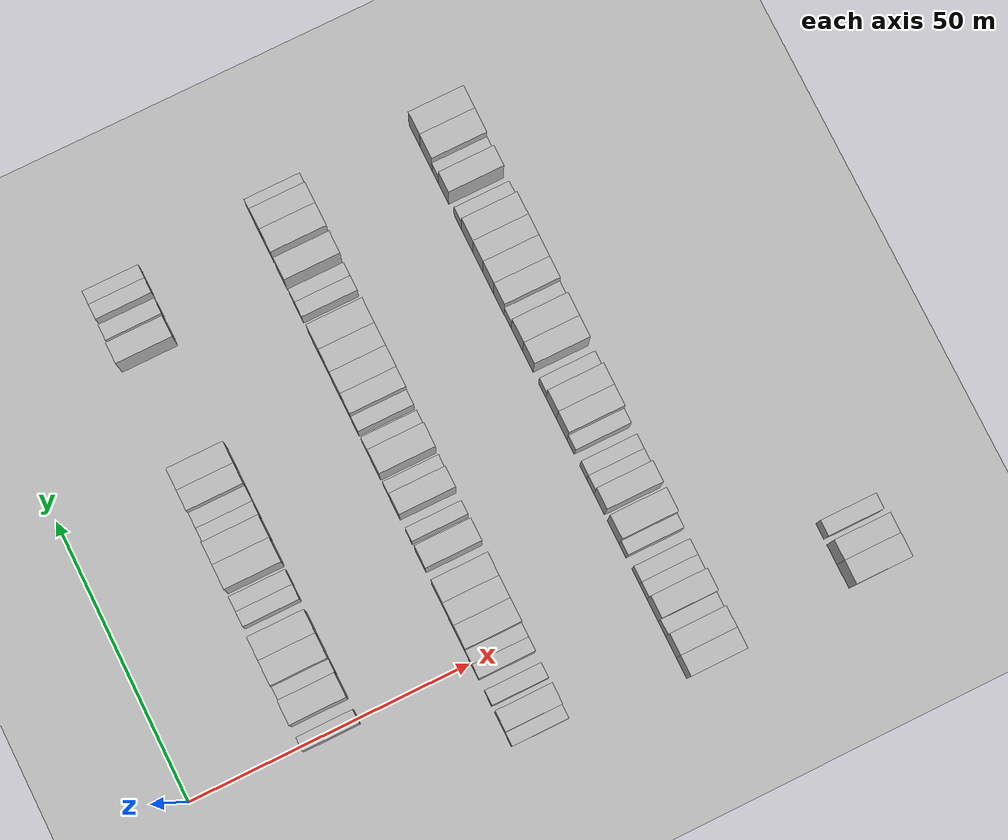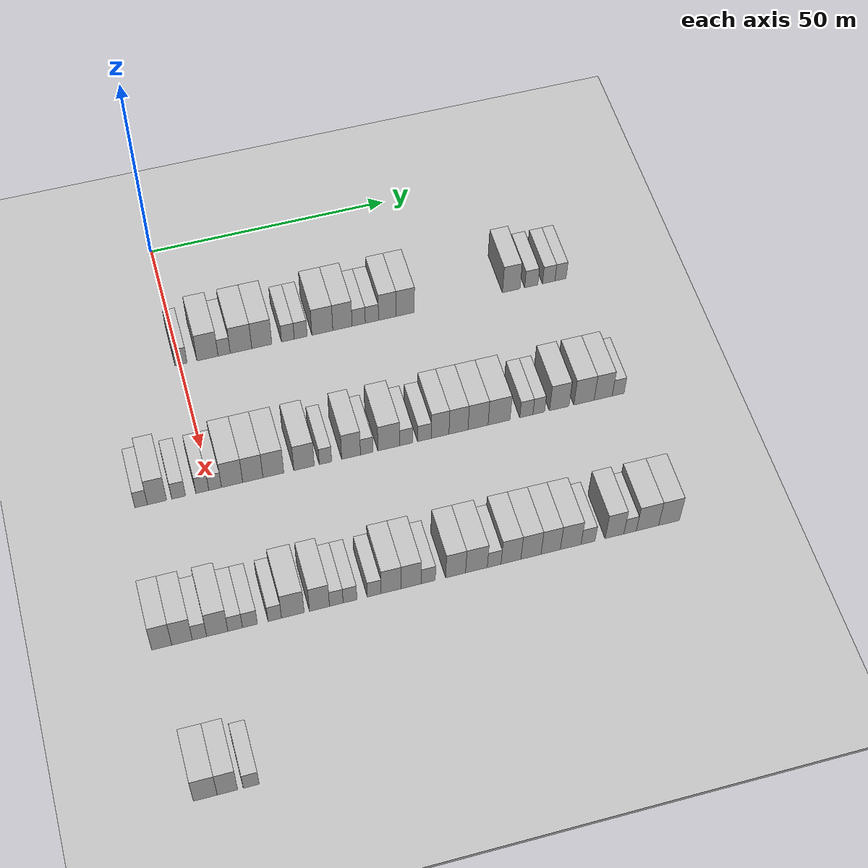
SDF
<sdf version="1.6">
 <world name="default">
  <include><name>ground_plane_1</name><uri>model://HANNAS_ground_plane</uri></include>
  <include>
   <name>ground_plane_2</name>
   <uri>model://HANNAS_ground_plane</uri>
   <pose>100 0 0  0 0 0</pose>
  </include>
  <model name="building_97">
   <static>1</static>
   <pose>25.0000 0.2616 0 0.000000 0.000000 0.000000</pose>
   <link name="link">
    <pose>0 0 3.00 0 0 0</pose>
    <collision name="collision"><geometry><box><size>10.0000 2.4591 6.0000</size></box></geometry></collision>
    <visual name="visual">
     <cast_shadows>0</cast_shadows>
     <geometry><box><size>10.0000 2.4591 6.0000</size></box></geometry>
     <material>
      <script>
       <uri>model://HANNAS_wall/materials/scripts</uri>
       <uri>model://HANNAS_wall/materials/textures</uri>
       <name>vrc/HANNAS_wall</name>
      </script>
     </material>
    </visual>
   </link>
  </model>
  <model name="building_98">
   <static>1</static>
   <pose>25.0000 5.6486 0 0.000000 0.000000 0.000000</pose>
   <link name="link">
    <pose>0 0 4.50 0 0 0</pose>
    <collision name="collision"><geometry><box><size>10.0000 4.3149 9.0000</size></box></geometry></collision>
    <visual name="visual">
     <cast_shadows>0</cast_shadows>
     <geometry><box><size>10.0000 4.3149 9.0000</size></box></geometry>
     <material>
      <script>
       <uri>model://HANNAS_wall/materials/scripts</uri>
       <uri>model://HANNAS_wall/materials/textures</uri>
       <name>vrc/HANNAS_wall</name>
      </script>
     </material>
    </visual>
   </link>
  </model>
  <model name="building_99">
   <static>1</static>
   <pose>25.0000 9.0639 0 0.000000 0.000000 0.000000</pose>
   <link name="link">
    <pose>0 0 3.00 0 0 0</pose>
    <collision name="collision"><geometry><box><size>10.0000 2.5157 6.0000</size></box></geometry></collision>
    <visual name="visual">
     <cast_shadows>0</cast_shadows>
     <geometry><box><size>10.0000 2.5157 6.0000</size></box></geometry>
     <material>
      <script>
       <uri>model://HANNAS_wall/materials/scripts</uri>
       <uri>model://HANNAS_wall/materials/textures</uri>
       <name>vrc/HANNAS_wall</name>
      </script>
     </material>
    </visual>
   </link>
  </model>
  <model name="building_100">
   <static>1</static>
   <pose>25.0000 12.5320 0 0.000000 0.000000 0.000000</pose>
   <link name="link">
    <pose>0 0 4.50 0 0 0</pose>
    <collision name="collision"><geometry><box><size>10.0000 4.4206 9.0000</size></box></geometry></collision>
    <visual name="visual">
     <cast_shadows>0</cast_shadows>
     <geometry><box><size>10.0000 4.4206 9.0000</size></box></geometry>
     <material>
      <script>
       <uri>model://HANNAS_wall/materials/scripts</uri>
       <uri>model://HANNAS_wall/materials/textures</uri>
       <name>vrc/HANNAS_wall</name>
      </script>
     </material>
    </visual>
   </link>
  </model>
  <model name="building_101">
   <static>1</static>
   <pose>25.0000 16.8081 0 0.000000 0.000000 0.000000</pose>
   <link name="link">
    <pose>0 0 4.50 0 0 0</pose>
    <collision name="collision"><geometry><box><size>10.0000 4.1316 9.0000</size></box></geometry></collision>
    <visual name="visual">
     <cast_shadows>0</cast_shadows>
     <geometry><box><size>10.0000 4.1316 9.0000</size></box></geometry>
     <material>
      <script>
       <uri>model://HANNAS_wall/materials/scripts</uri>
       <uri>model://HANNAS_wall/materials/textures</uri>
       <name>vrc/HANNAS_wall</name>
      </script>
     </material>
    </visual>
   </link>
  </model>
  <model name="building_102">
   <static>1</static>
   <pose>25.0000 22.2005 0 0.000000 0.000000 0.000000</pose>
   <link name="link">
    <pose>0 0 3.00 0 0 0</pose>
    <collision name="collision"><geometry><box><size>10.0000 2.6532 6.0000</size></box></geometry></collision>
    <visual name="visual">
     <cast_shadows>0</cast_shadows>
     <geometry><box><size>10.0000 2.6532 6.0000</size></box></geometry>
     <material>
      <script>
       <uri>model://HANNAS_wall/materials/scripts</uri>
       <uri>model://HANNAS_wall/materials/textures</uri>
       <name>vrc/HANNAS_wall</name>
      </script>
     </material>
    </visual>
   </link>
  </model>
  <model name="building_103">
   <static>1</static>
   <pose>25.0000 24.8599 0 0.000000 0.000000 0.000000</pose>
   <link name="link">
    <pose>0 0 3.00 0 0 0</pose>
    <collision name="collision"><geometry><box><size>10.0000 2.6656 6.0000</size></box></geometry></collision>
    <visual name="visual">
     <cast_shadows>0</cast_shadows>
     <geometry><box><size>10.0000 2.6656 6.0000</size></box></geometry>
     <material>
      <script>
       <uri>model://HANNAS_wall/materials/scripts</uri>
       <uri>model://HANNAS_wall/materials/textures</uri>
       <name>vrc/HANNAS_wall</name>
      </script>
     </material>
    </visual>
   </link>
  </model>
  <model name="building_104">
   <static>1</static>
   <pose>25.0000 29.3678 0 0.000000 0.000000 0.000000</pose>
   <link name="link">
    <pose>0 0 4.50 0 0 0</pose>
    <collision name="collision"><geometry><box><size>10.0000 4.3503 9.0000</size></box></geometry></collision>
    <visual name="visual">
     <cast_shadows>0</cast_shadows>
     <geometry><box><size>10.0000 4.3503 9.0000</size></box></geometry>
     <material>
      <script>
       <uri>model://HANNAS_wall/materials/scripts</uri>
       <uri>model://HANNAS_wall/materials/textures</uri>
       <name>vrc/HANNAS_wall</name>
      </script>
     </material>
    </visual>
   </link>
  </model>
  <model name="building_105">
   <static>1</static>
   <pose>25.0000 33.5503 0 0.000000 0.000000 0.000000</pose>
   <link name="link">
    <pose>0 0 4.50 0 0 0</pose>
    <collision name="collision"><geometry><box><size>10.0000 4.0147 9.0000</size></box></geometry></collision>
    <visual name="visual">
     <cast_shadows>0</cast_shadows>
     <geometry><box><size>10.0000 4.0147 9.0000</size></box></geometry>
     <material>
      <script>
       <uri>model://HANNAS_wall/materials/scripts</uri>
       <uri>model://HANNAS_wall/materials/textures</uri>
       <name>vrc/HANNAS_wall</name>
      </script>
     </material>
    </visual>
   </link>
  </model>
  <model name="building_106">
   <static>1</static>
   <pose>25.0000 36.9479 0 0.000000 0.000000 0.000000</pose>
   <link name="link">
    <pose>0 0 3.00 0 0 0</pose>
    <collision name="collision"><geometry><box><size>10.0000 2.7805 6.0000</size></box></geometry></collision>
    <visual name="visual">
     <cast_shadows>0</cast_shadows>
     <geometry><box><size>10.0000 2.7805 6.0000</size></box></geometry>
     <material>
      <script>
       <uri>model://HANNAS_wall/materials/scripts</uri>
       <uri>model://HANNAS_wall/materials/textures</uri>
       <name>vrc/HANNAS_wall</name>
      </script>
     </material>
    </visual>
   </link>
  </model>
  <model name="building_107">
   <static>1</static>
   <pose>25.0000 39.7214 0 0.000000 0.000000 0.000000</pose>
   <link name="link">
    <pose>0 0 3.00 0 0 0</pose>
    <collision name="collision"><geometry><box><size>10.0000 2.7665 6.0000</size></box></geometry></collision>
    <visual name="visual">
     <cast_shadows>0</cast_shadows>
     <geometry><box><size>10.0000 2.7665 6.0000</size></box></geometry>
     <material>
      <script>
       <uri>model://HANNAS_wall/materials/scripts</uri>
       <uri>model://HANNAS_wall/materials/textures</uri>
       <name>vrc/HANNAS_wall</name>
      </script>
     </material>
    </visual>
   </link>
  </model>
  <model name="building_108">
   <static>1</static>
   <pose>25.0000 42.9335 0 0.000000 0.000000 0.000000</pose>
   <link name="link">
    <pose>0 0 4.50 0 0 0</pose>
    <collision name="collision"><geometry><box><size>10.0000 3.6577 9.0000</size></box></geometry></collision>
    <visual name="visual">
     <cast_shadows>0</cast_shadows>
     <geometry><box><size>10.0000 3.6577 9.0000</size></box></geometry>
     <material>
      <script>
       <uri>model://HANNAS_wall/materials/scripts</uri>
       <uri>model://HANNAS_wall/materials/textures</uri>
       <name>vrc/HANNAS_wall</name>
      </script>
     </material>
    </visual>
   </link>
  </model>
  <model name="building_109">
   <static>1</static>
   <pose>25.0000 46.6981 0 0.000000 0.000000 0.000000</pose>
   <link name="link">
    <pose>0 0 4.50 0 0 0</pose>
    <collision name="collision"><geometry><box><size>10.0000 3.8717 9.0000</size></box></geometry></collision>
    <visual name="visual">
     <cast_shadows>0</cast_shadows>
     <geometry><box><size>10.0000 3.8717 9.0000</size></box></geometry>
     <material>
      <script>
       <uri>model://HANNAS_wall/materials/scripts</uri>
       <uri>model://HANNAS_wall/materials/textures</uri>
       <name>vrc/HANNAS_wall</name>
      </script>
     </material>
    </visual>
   </link>
  </model>
  <model name="building_110">
   <static>1</static>
   <pose>25.0000 69.3242 0 0.000000 0.000000 0.000000</pose>
   <link name="link">
    <pose>0 0 4.50 0 0 0</pose>
    <collision name="collision"><geometry><box><size>10.0000 3.7935 9.0000</size></box></geometry></collision>
    <visual name="visual">
     <cast_shadows>0</cast_shadows>
     <geometry><box><size>10.0000 3.7935 9.0000</size></box></geometry>
     <material>
      <script>
       <uri>model://HANNAS_wall/materials/scripts</uri>
       <uri>model://HANNAS_wall/materials/textures</uri>
       <name>vrc/HANNAS_wall</name>
      </script>
     </material>
    </visual>
   </link>
  </model>
  <model name="building_111">
   <static>1</static>
   <pose>25.0000 73.6402 0 0.000000 0.000000 0.000000</pose>
   <link name="link">
    <pose>0 0 3.00 0 0 0</pose>
    <collision name="collision"><geometry><box><size>10.0000 2.8386 6.0000</size></box></geometry></collision>
    <visual name="visual">
     <cast_shadows>0</cast_shadows>
     <geometry><box><size>10.0000 2.8386 6.0000</size></box></geometry>
     <material>
      <script>
       <uri>model://HANNAS_wall/materials/scripts</uri>
       <uri>model://HANNAS_wall/materials/textures</uri>
       <name>vrc/HANNAS_wall</name>
      </script>
     </material>
    </visual>
   </link>
  </model>
  <model name="building_112">
   <static>1</static>
   <pose>25.0000 77.4121 0 0.000000 0.000000 0.000000</pose>
   <link name="link">
    <pose>0 0 3.00 0 0 0</pose>
    <collision name="collision"><geometry><box><size>10.0000 2.7052 6.0000</size></box></geometry></collision>
    <visual name="visual">
     <cast_shadows>0</cast_shadows>
     <geometry><box><size>10.0000 2.7052 6.0000</size></box></geometry>
     <material>
      <script>
       <uri>model://HANNAS_wall/materials/scripts</uri>
       <uri>model://HANNAS_wall/materials/textures</uri>
       <name>vrc/HANNAS_wall</name>
      </script>
     </material>
    </visual>
   </link>
  </model>
  <model name="building_113">
   <static>1</static>
   <pose>25.0000 79.9692 0 0.000000 0.000000 0.000000</pose>
   <link name="link">
    <pose>0 0 3.00 0 0 0</pose>
    <collision name="collision"><geometry><box><size>10.0000 2.4090 6.0000</size></box></geometry></collision>
    <visual name="visual">
     <cast_shadows>0</cast_shadows>
     <geometry><box><size>10.0000 2.4090 6.0000</size></box></geometry>
     <material>
      <script>
       <uri>model://HANNAS_wall/materials/scripts</uri>
       <uri>model://HANNAS_wall/materials/textures</uri>
       <name>vrc/HANNAS_wall</name>
      </script>
     </material>
    </visual>
   </link>
  </model>
  <model name="building_318">
   <static>1</static>
   <pose>55.0000 -13.6308 0 0.000000 0.000000 0.000000</pose>
   <link name="link">
    <pose>0 0 3.00 0 0 0</pose>
    <collision name="collision"><geometry><box><size>10.0000 2.4141 6.0000</size></box></geometry></collision>
    <visual name="visual">
     <cast_shadows>0</cast_shadows>
     <geometry><box><size>10.0000 2.4141 6.0000</size></box></geometry>
     <material>
      <script>
       <uri>model://HANNAS_wall/materials/scripts</uri>
       <uri>model://HANNAS_wall/materials/textures</uri>
       <name>vrc/HANNAS_wall</name>
      </script>
     </material>
    </visual>
   </link>
  </model>
  <model name="building_319">
   <static>1</static>
   <pose>55.0000 -10.5659 0 0.000000 0.000000 0.000000</pose>
   <link name="link">
    <pose>0 0 4.50 0 0 0</pose>
    <collision name="collision"><geometry><box><size>10.0000 3.7156 9.0000</size></box></geometry></collision>
    <visual name="visual">
     <cast_shadows>0</cast_shadows>
     <geometry><box><size>10.0000 3.7156 9.0000</size></box></geometry>
     <material>
      <script>
       <uri>model://HANNAS_wall/materials/scripts</uri>
       <uri>model://HANNAS_wall/materials/textures</uri>
       <name>vrc/HANNAS_wall</name>
      </script>
     </material>
    </visual>
   </link>
  </model>
  <model name="building_320">
   <static>1</static>
   <pose>55.0000 -6.3694 0 0.000000 0.000000 0.000000</pose>
   <link name="link">
    <pose>0 0 3.00 0 0 0</pose>
    <collision name="collision"><geometry><box><size>10.0000 2.6775 6.0000</size></box></geometry></collision>
    <visual name="visual">
     <cast_shadows>0</cast_shadows>
     <geometry><box><size>10.0000 2.6775 6.0000</size></box></geometry>
     <material>
      <script>
       <uri>model://HANNAS_wall/materials/scripts</uri>
       <uri>model://HANNAS_wall/materials/textures</uri>
       <name>vrc/HANNAS_wall</name>
      </script>
     </material>
    </visual>
   </link>
  </model>
  <model name="building_321">
   <static>1</static>
   <pose>55.0000 -1.7694 0 0.000000 0.000000 0.000000</pose>
   <link name="link">
    <pose>0 0 3.00 0 0 0</pose>
    <collision name="collision"><geometry><box><size>10.0000 2.5225 6.0000</size></box></geometry></collision>
    <visual name="visual">
     <cast_shadows>0</cast_shadows>
     <geometry><box><size>10.0000 2.5225 6.0000</size></box></geometry>
     <material>
      <script>
       <uri>model://HANNAS_wall/materials/scripts</uri>
       <uri>model://HANNAS_wall/materials/textures</uri>
       <name>vrc/HANNAS_wall</name>
      </script>
     </material>
    </visual>
   </link>
  </model>
  <model name="building_322">
   <static>1</static>
   <pose>55.0000 0.7311 0 0.000000 0.000000 0.000000</pose>
   <link name="link">
    <pose>0 0 3.00 0 0 0</pose>
    <collision name="collision"><geometry><box><size>10.0000 2.4786 6.0000</size></box></geometry></collision>
    <visual name="visual">
     <cast_shadows>0</cast_shadows>
     <geometry><box><size>10.0000 2.4786 6.0000</size></box></geometry>
     <material>
      <script>
       <uri>model://HANNAS_wall/materials/scripts</uri>
       <uri>model://HANNAS_wall/materials/textures</uri>
       <name>vrc/HANNAS_wall</name>
      </script>
     </material>
    </visual>
   </link>
  </model>
  <model name="building_323">
   <static>1</static>
   <pose>55.0000 4.0510 0 0.000000 0.000000 0.000000</pose>
   <link name="link">
    <pose>0 0 4.50 0 0 0</pose>
    <collision name="collision"><geometry><box><size>10.0000 4.1611 9.0000</size></box></geometry></collision>
    <visual name="visual">
     <cast_shadows>0</cast_shadows>
     <geometry><box><size>10.0000 4.1611 9.0000</size></box></geometry>
     <material>
      <script>
       <uri>model://HANNAS_wall/materials/scripts</uri>
       <uri>model://HANNAS_wall/materials/textures</uri>
       <name>vrc/HANNAS_wall</name>
      </script>
     </material>
    </visual>
   </link>
  </model>
  <model name="building_324">
   <static>1</static>
   <pose>55.0000 8.1205 0 0.000000 0.000000 0.000000</pose>
   <link name="link">
    <pose>0 0 4.50 0 0 0</pose>
    <collision name="collision"><geometry><box><size>10.0000 3.9779 9.0000</size></box></geometry></collision>
    <visual name="visual">
     <cast_shadows>0</cast_shadows>
     <geometry><box><size>10.0000 3.9779 9.0000</size></box></geometry>
     <material>
      <script>
       <uri>model://HANNAS_wall/materials/scripts</uri>
       <uri>model://HANNAS_wall/materials/textures</uri>
       <name>vrc/HANNAS_wall</name>
      </script>
     </material>
    </visual>
   </link>
  </model>
  <model name="building_325">
   <static>1</static>
   <pose>55.0000 12.1557 0 0.000000 0.000000 0.000000</pose>
   <link name="link">
    <pose>0 0 4.50 0 0 0</pose>
    <collision name="collision"><geometry><box><size>10.0000 4.0927 9.0000</size></box></geometry></collision>
    <visual name="visual">
     <cast_shadows>0</cast_shadows>
     <geometry><box><size>10.0000 4.0927 9.0000</size></box></geometry>
     <material>
      <script>
       <uri>model://HANNAS_wall/materials/scripts</uri>
       <uri>model://HANNAS_wall/materials/textures</uri>
       <name>vrc/HANNAS_wall</name>
      </script>
     </material>
    </visual>
   </link>
  </model>
  <model name="building_326">
   <static>1</static>
   <pose>55.0000 18.2205 0 0.000000 0.000000 0.000000</pose>
   <link name="link">
    <pose>0 0 4.50 0 0 0</pose>
    <collision name="collision"><geometry><box><size>10.0000 4.0369 9.0000</size></box></geometry></collision>
    <visual name="visual">
     <cast_shadows>0</cast_shadows>
     <geometry><box><size>10.0000 4.0369 9.0000</size></box></geometry>
     <material>
      <script>
       <uri>model://HANNAS_wall/materials/scripts</uri>
       <uri>model://HANNAS_wall/materials/textures</uri>
       <name>vrc/HANNAS_wall</name>
      </script>
     </material>
    </visual>
   </link>
  </model>
  <model name="building_327">
   <static>1</static>
   <pose>55.0000 22.4683 0 0.000000 0.000000 0.000000</pose>
   <link name="link">
    <pose>0 0 3.00 0 0 0</pose>
    <collision name="collision"><geometry><box><size>10.0000 2.4587 6.0000</size></box></geometry></collision>
    <visual name="visual">
     <cast_shadows>0</cast_shadows>
     <geometry><box><size>10.0000 2.4587 6.0000</size></box></geometry>
     <material>
      <script>
       <uri>model://HANNAS_wall/materials/scripts</uri>
       <uri>model://HANNAS_wall/materials/textures</uri>
       <name>vrc/HANNAS_wall</name>
      </script>
     </material>
    </visual>
   </link>
  </model>
  <model name="building_328">
   <static>1</static>
   <pose>55.0000 27.5744 0 0.000000 0.000000 0.000000</pose>
   <link name="link">
    <pose>0 0 4.50 0 0 0</pose>
    <collision name="collision"><geometry><box><size>10.0000 3.7535 9.0000</size></box></geometry></collision>
    <visual name="visual">
     <cast_shadows>0</cast_shadows>
     <geometry><box><size>10.0000 3.7535 9.0000</size></box></geometry>
     <material>
      <script>
       <uri>model://HANNAS_wall/materials/scripts</uri>
       <uri>model://HANNAS_wall/materials/textures</uri>
       <name>vrc/HANNAS_wall</name>
      </script>
     </material>
    </visual>
   </link>
  </model>
  <model name="building_329">
   <static>1</static>
   <pose>55.0000 30.6943 0 0.000000 0.000000 0.000000</pose>
   <link name="link">
    <pose>0 0 3.00 0 0 0</pose>
    <collision name="collision"><geometry><box><size>10.0000 2.4864 6.0000</size></box></geometry></collision>
    <visual name="visual">
     <cast_shadows>0</cast_shadows>
     <geometry><box><size>10.0000 2.4864 6.0000</size></box></geometry>
     <material>
      <script>
       <uri>model://HANNAS_wall/materials/scripts</uri>
       <uri>model://HANNAS_wall/materials/textures</uri>
       <name>vrc/HANNAS_wall</name>
      </script>
     </material>
    </visual>
   </link>
  </model>
  <model name="building_330">
   <static>1</static>
   <pose>55.0000 35.1027 0 0.000000 0.000000 0.000000</pose>
   <link name="link">
    <pose>0 0 4.50 0 0 0</pose>
    <collision name="collision"><geometry><box><size>10.0000 4.3304 9.0000</size></box></geometry></collision>
    <visual name="visual">
     <cast_shadows>0</cast_shadows>
     <geometry><box><size>10.0000 4.3304 9.0000</size></box></geometry>
     <material>
      <script>
       <uri>model://HANNAS_wall/materials/scripts</uri>
       <uri>model://HANNAS_wall/materials/textures</uri>
       <name>vrc/HANNAS_wall</name>
      </script>
     </material>
    </visual>
   </link>
  </model>
  <model name="building_331">
   <static>1</static>
   <pose>55.0000 38.5984 0 0.000000 0.000000 0.000000</pose>
   <link name="link">
    <pose>0 0 3.00 0 0 0</pose>
    <collision name="collision"><geometry><box><size>10.0000 2.6610 6.0000</size></box></geometry></collision>
    <visual name="visual">
     <cast_shadows>0</cast_shadows>
     <geometry><box><size>10.0000 2.6610 6.0000</size></box></geometry>
     <material>
      <script>
       <uri>model://HANNAS_wall/materials/scripts</uri>
       <uri>model://HANNAS_wall/materials/textures</uri>
       <name>vrc/HANNAS_wall</name>
      </script>
     </material>
    </visual>
   </link>
  </model>
  <model name="building_332">
   <static>1</static>
   <pose>55.0000 42.2958 0 0.000000 0.000000 0.000000</pose>
   <link name="link">
    <pose>0 0 3.00 0 0 0</pose>
    <collision name="collision"><geometry><box><size>10.0000 2.7339 6.0000</size></box></geometry></collision>
    <visual name="visual">
     <cast_shadows>0</cast_shadows>
     <geometry><box><size>10.0000 2.7339 6.0000</size></box></geometry>
     <material>
      <script>
       <uri>model://HANNAS_wall/materials/scripts</uri>
       <uri>model://HANNAS_wall/materials/textures</uri>
       <name>vrc/HANNAS_wall</name>
      </script>
     </material>
    </visual>
   </link>
  </model>
  <model name="building_333">
   <static>1</static>
   <pose>55.0000 45.4675 0 0.000000 0.000000 0.000000</pose>
   <link name="link">
    <pose>0 0 4.50 0 0 0</pose>
    <collision name="collision"><geometry><box><size>10.0000 3.6093 9.0000</size></box></geometry></collision>
    <visual name="visual">
     <cast_shadows>0</cast_shadows>
     <geometry><box><size>10.0000 3.6093 9.0000</size></box></geometry>
     <material>
      <script>
       <uri>model://HANNAS_wall/materials/scripts</uri>
       <uri>model://HANNAS_wall/materials/textures</uri>
       <name>vrc/HANNAS_wall</name>
      </script>
     </material>
    </visual>
   </link>
  </model>
  <model name="building_334">
   <static>1</static>
   <pose>55.0000 49.2082 0 0.000000 0.000000 0.000000</pose>
   <link name="link">
    <pose>0 0 4.50 0 0 0</pose>
    <collision name="collision"><geometry><box><size>10.0000 3.8721 9.0000</size></box></geometry></collision>
    <visual name="visual">
     <cast_shadows>0</cast_shadows>
     <geometry><box><size>10.0000 3.8721 9.0000</size></box></geometry>
     <material>
      <script>
       <uri>model://HANNAS_wall/materials/scripts</uri>
       <uri>model://HANNAS_wall/materials/textures</uri>
       <name>vrc/HANNAS_wall</name>
      </script>
     </material>
    </visual>
   </link>
  </model>
  <model name="building_335">
   <static>1</static>
   <pose>55.0000 53.1935 0 0.000000 0.000000 0.000000</pose>
   <link name="link">
    <pose>0 0 4.50 0 0 0</pose>
    <collision name="collision"><geometry><box><size>10.0000 4.0985 9.0000</size></box></geometry></collision>
    <visual name="visual">
     <cast_shadows>0</cast_shadows>
     <geometry><box><size>10.0000 4.0985 9.0000</size></box></geometry>
     <material>
      <script>
       <uri>model://HANNAS_wall/materials/scripts</uri>
       <uri>model://HANNAS_wall/materials/textures</uri>
       <name>vrc/HANNAS_wall</name>
      </script>
     </material>
    </visual>
   </link>
  </model>
  <model name="building_336">
   <static>1</static>
   <pose>55.0000 57.4901 0 0.000000 0.000000 0.000000</pose>
   <link name="link">
    <pose>0 0 4.50 0 0 0</pose>
    <collision name="collision"><geometry><box><size>10.0000 4.4948 9.0000</size></box></geometry></collision>
    <visual name="visual">
     <cast_shadows>0</cast_shadows>
     <geometry><box><size>10.0000 4.4948 9.0000</size></box></geometry>
     <material>
      <script>
       <uri>model://HANNAS_wall/materials/scripts</uri>
       <uri>model://HANNAS_wall/materials/textures</uri>
       <name>vrc/HANNAS_wall</name>
      </script>
     </material>
    </visual>
   </link>
  </model>
  <model name="building_337">
   <static>1</static>
   <pose>55.0000 63.0893 0 0.000000 0.000000 0.000000</pose>
   <link name="link">
    <pose>0 0 3.00 0 0 0</pose>
    <collision name="collision"><geometry><box><size>10.0000 2.7036 6.0000</size></box></geometry></collision>
    <visual name="visual">
     <cast_shadows>0</cast_shadows>
     <geometry><box><size>10.0000 2.7036 6.0000</size></box></geometry>
     <material>
      <script>
       <uri>model://HANNAS_wall/materials/scripts</uri>
       <uri>model://HANNAS_wall/materials/textures</uri>
       <name>vrc/HANNAS_wall</name>
      </script>
     </material>
    </visual>
   </link>
  </model>
  <model name="building_338">
   <static>1</static>
   <pose>55.0000 65.6422 0 0.000000 0.000000 0.000000</pose>
   <link name="link">
    <pose>0 0 3.00 0 0 0</pose>
    <collision name="collision"><geometry><box><size>10.0000 2.4022 6.0000</size></box></geometry></collision>
    <visual name="visual">
     <cast_shadows>0</cast_shadows>
     <geometry><box><size>10.0000 2.4022 6.0000</size></box></geometry>
     <material>
      <script>
       <uri>model://HANNAS_wall/materials/scripts</uri>
       <uri>model://HANNAS_wall/materials/textures</uri>
       <name>vrc/HANNAS_wall</name>
      </script>
     </material>
    </visual>
   </link>
  </model>
  <model name="building_339">
   <static>1</static>
   <pose>55.0000 69.8674 0 0.000000 0.000000 0.000000</pose>
   <link name="link">
    <pose>0 0 4.50 0 0 0</pose>
    <collision name="collision"><geometry><box><size>10.0000 4.0483 9.0000</size></box></geometry></collision>
    <visual name="visual">
     <cast_shadows>0</cast_shadows>
     <geometry><box><size>10.0000 4.0483 9.0000</size></box></geometry>
     <material>
      <script>
       <uri>model://HANNAS_wall/materials/scripts</uri>
       <uri>model://HANNAS_wall/materials/textures</uri>
       <name>vrc/HANNAS_wall</name>
      </script>
     </material>
    </visual>
   </link>
  </model>
  <model name="building_340">
   <static>1</static>
   <pose>55.0000 74.9980 0 0.000000 0.000000 0.000000</pose>
   <link name="link">
    <pose>0 0 4.50 0 0 0</pose>
    <collision name="collision"><geometry><box><size>10.0000 4.2129 9.0000</size></box></geometry></collision>
    <visual name="visual">
     <cast_shadows>0</cast_shadows>
     <geometry><box><size>10.0000 4.2129 9.0000</size></box></geometry>
     <material>
      <script>
       <uri>model://HANNAS_wall/materials/scripts</uri>
       <uri>model://HANNAS_wall/materials/textures</uri>
       <name>vrc/HANNAS_wall</name>
      </script>
     </material>
    </visual>
   </link>
  </model>
  <model name="building_341">
   <static>1</static>
   <pose>55.0000 78.9836 0 0.000000 0.000000 0.000000</pose>
   <link name="link">
    <pose>0 0 4.50 0 0 0</pose>
    <collision name="collision"><geometry><box><size>10.0000 3.7583 9.0000</size></box></geometry></collision>
    <visual name="visual">
     <cast_shadows>0</cast_shadows>
     <geometry><box><size>10.0000 3.7583 9.0000</size></box></geometry>
     <material>
      <script>
       <uri>model://HANNAS_wall/materials/scripts</uri>
       <uri>model://HANNAS_wall/materials/textures</uri>
       <name>vrc/HANNAS_wall</name>
      </script>
     </material>
    </visual>
   </link>
  </model>
  <model name="building_342">
   <static>1</static>
   <pose>55.0000 82.1033 0 0.000000 0.000000 0.000000</pose>
   <link name="link">
    <pose>0 0 3.00 0 0 0</pose>
    <collision name="collision"><geometry><box><size>10.0000 2.4813 6.0000</size></box></geometry></collision>
    <visual name="visual">
     <cast_shadows>0</cast_shadows>
     <geometry><box><size>10.0000 2.4813 6.0000</size></box></geometry>
     <material>
      <script>
       <uri>model://HANNAS_wall/materials/scripts</uri>
       <uri>model://HANNAS_wall/materials/textures</uri>
       <name>vrc/HANNAS_wall</name>
      </script>
     </material>
    </visual>
   </link>
  </model>
  <model name="building_554">
   <static>1</static>
   <pose>85.0000 -15.6357 0 0.000000 0.000000 0.000000</pose>
   <link name="link">
    <pose>0 0 4.50 0 0 0</pose>
    <collision name="collision"><geometry><box><size>10.0000 3.6910 9.0000</size></box></geometry></collision>
    <visual name="visual">
     <cast_shadows>0</cast_shadows>
     <geometry><box><size>10.0000 3.6910 9.0000</size></box></geometry>
     <material>
      <script>
       <uri>model://HANNAS_wall/materials/scripts</uri>
       <uri>model://HANNAS_wall/materials/textures</uri>
       <name>vrc/HANNAS_wall</name>
      </script>
     </material>
    </visual>
   </link>
  </model>
  <model name="building_555">
   <static>1</static>
   <pose>85.0000 -11.8846 0 0.000000 0.000000 0.000000</pose>
   <link name="link">
    <pose>0 0 4.50 0 0 0</pose>
    <collision name="collision"><geometry><box><size>10.0000 3.8113 9.0000</size></box></geometry></collision>
    <visual name="visual">
     <cast_shadows>0</cast_shadows>
     <geometry><box><size>10.0000 3.8113 9.0000</size></box></geometry>
     <material>
      <script>
       <uri>model://HANNAS_wall/materials/scripts</uri>
       <uri>model://HANNAS_wall/materials/textures</uri>
       <name>vrc/HANNAS_wall</name>
      </script>
     </material>
    </visual>
   </link>
  </model>
  <model name="building_556">
   <static>1</static>
   <pose>85.0000 -8.6473 0 0.000000 0.000000 0.000000</pose>
   <link name="link">
    <pose>0 0 3.00 0 0 0</pose>
    <collision name="collision"><geometry><box><size>10.0000 2.6631 6.0000</size></box></geometry></collision>
    <visual name="visual">
     <cast_shadows>0</cast_shadows>
     <geometry><box><size>10.0000 2.6631 6.0000</size></box></geometry>
     <material>
      <script>
       <uri>model://HANNAS_wall/materials/scripts</uri>
       <uri>model://HANNAS_wall/materials/textures</uri>
       <name>vrc/HANNAS_wall</name>
      </script>
     </material>
    </visual>
   </link>
  </model>
  <model name="building_557">
   <static>1</static>
   <pose>85.0000 -5.3428 0 0.000000 0.000000 0.000000</pose>
   <link name="link">
    <pose>0 0 4.50 0 0 0</pose>
    <collision name="collision"><geometry><box><size>10.0000 3.9460 9.0000</size></box></geometry></collision>
    <visual name="visual">
     <cast_shadows>0</cast_shadows>
     <geometry><box><size>10.0000 3.9460 9.0000</size></box></geometry>
     <material>
      <script>
       <uri>model://HANNAS_wall/materials/scripts</uri>
       <uri>model://HANNAS_wall/materials/textures</uri>
       <name>vrc/HANNAS_wall</name>
      </script>
     </material>
    </visual>
   </link>
  </model>
  <model name="building_558">
   <static>1</static>
   <pose>85.0000 -2.0113 0 0.000000 0.000000 0.000000</pose>
   <link name="link">
    <pose>0 0 3.00 0 0 0</pose>
    <collision name="collision"><geometry><box><size>10.0000 2.7171 6.0000</size></box></geometry></collision>
    <visual name="visual">
     <cast_shadows>0</cast_shadows>
     <geometry><box><size>10.0000 2.7171 6.0000</size></box></geometry>
     <material>
      <script>
       <uri>model://HANNAS_wall/materials/scripts</uri>
       <uri>model://HANNAS_wall/materials/textures</uri>
       <name>vrc/HANNAS_wall</name>
      </script>
     </material>
    </visual>
   </link>
  </model>
  <model name="building_559">
   <static>1</static>
   <pose>85.0000 0.7391 0 0.000000 0.000000 0.000000</pose>
   <link name="link">
    <pose>0 0 3.00 0 0 0</pose>
    <collision name="collision"><geometry><box><size>10.0000 2.7837 6.0000</size></box></geometry></collision>
    <visual name="visual">
     <cast_shadows>0</cast_shadows>
     <geometry><box><size>10.0000 2.7837 6.0000</size></box></geometry>
     <material>
      <script>
       <uri>model://HANNAS_wall/materials/scripts</uri>
       <uri>model://HANNAS_wall/materials/textures</uri>
       <name>vrc/HANNAS_wall</name>
      </script>
     </material>
    </visual>
   </link>
  </model>
  <model name="building_560">
   <static>1</static>
   <pose>85.0000 5.3861 0 0.000000 0.000000 0.000000</pose>
   <link name="link">
    <pose>0 0 3.00 0 0 0</pose>
    <collision name="collision"><geometry><box><size>10.0000 2.5101 6.0000</size></box></geometry></collision>
    <visual name="visual">
     <cast_shadows>0</cast_shadows>
     <geometry><box><size>10.0000 2.5101 6.0000</size></box></geometry>
     <material>
      <script>
       <uri>model://HANNAS_wall/materials/scripts</uri>
       <uri>model://HANNAS_wall/materials/textures</uri>
       <name>vrc/HANNAS_wall</name>
      </script>
     </material>
    </visual>
   </link>
  </model>
  <model name="building_561">
   <static>1</static>
   <pose>85.0000 8.7787 0 0.000000 0.000000 0.000000</pose>
   <link name="link">
    <pose>0 0 4.50 0 0 0</pose>
    <collision name="collision"><geometry><box><size>10.0000 4.2752 9.0000</size></box></geometry></collision>
    <visual name="visual">
     <cast_shadows>0</cast_shadows>
     <geometry><box><size>10.0000 4.2752 9.0000</size></box></geometry>
     <material>
      <script>
       <uri>model://HANNAS_wall/materials/scripts</uri>
       <uri>model://HANNAS_wall/materials/textures</uri>
       <name>vrc/HANNAS_wall</name>
      </script>
     </material>
    </visual>
   </link>
  </model>
  <model name="building_562">
   <static>1</static>
   <pose>85.0000 13.8075 0 0.000000 0.000000 0.000000</pose>
   <link name="link">
    <pose>0 0 4.50 0 0 0</pose>
    <collision name="collision"><geometry><box><size>10.0000 3.7823 9.0000</size></box></geometry></collision>
    <visual name="visual">
     <cast_shadows>0</cast_shadows>
     <geometry><box><size>10.0000 3.7823 9.0000</size></box></geometry>
     <material>
      <script>
       <uri>model://HANNAS_wall/materials/scripts</uri>
       <uri>model://HANNAS_wall/materials/textures</uri>
       <name>vrc/HANNAS_wall</name>
      </script>
     </material>
    </visual>
   </link>
  </model>
  <model name="building_563">
   <static>1</static>
   <pose>85.0000 16.9971 0 0.000000 0.000000 0.000000</pose>
   <link name="link">
    <pose>0 0 3.00 0 0 0</pose>
    <collision name="collision"><geometry><box><size>10.0000 2.5970 6.0000</size></box></geometry></collision>
    <visual name="visual">
     <cast_shadows>0</cast_shadows>
     <geometry><box><size>10.0000 2.5970 6.0000</size></box></geometry>
     <material>
      <script>
       <uri>model://HANNAS_wall/materials/scripts</uri>
       <uri>model://HANNAS_wall/materials/textures</uri>
       <name>vrc/HANNAS_wall</name>
      </script>
     </material>
    </visual>
   </link>
  </model>
  <model name="building_564">
   <static>1</static>
   <pose>85.0000 19.5962 0 0.000000 0.000000 0.000000</pose>
   <link name="link">
    <pose>0 0 3.00 0 0 0</pose>
    <collision name="collision"><geometry><box><size>10.0000 2.6013 6.0000</size></box></geometry></collision>
    <visual name="visual">
     <cast_shadows>0</cast_shadows>
     <geometry><box><size>10.0000 2.6013 6.0000</size></box></geometry>
     <material>
      <script>
       <uri>model://HANNAS_wall/materials/scripts</uri>
       <uri>model://HANNAS_wall/materials/textures</uri>
       <name>vrc/HANNAS_wall</name>
      </script>
     </material>
    </visual>
   </link>
  </model>
  <model name="building_565">
   <static>1</static>
   <pose>85.0000 24.2092 0 0.000000 0.000000 0.000000</pose>
   <link name="link">
    <pose>0 0 3.00 0 0 0</pose>
    <collision name="collision"><geometry><box><size>10.0000 2.6248 6.0000</size></box></geometry></collision>
    <visual name="visual">
     <cast_shadows>0</cast_shadows>
     <geometry><box><size>10.0000 2.6248 6.0000</size></box></geometry>
     <material>
      <script>
       <uri>model://HANNAS_wall/materials/scripts</uri>
       <uri>model://HANNAS_wall/materials/textures</uri>
       <name>vrc/HANNAS_wall</name>
      </script>
     </material>
    </visual>
   </link>
  </model>
  <model name="building_566">
   <static>1</static>
   <pose>85.0000 27.4385 0 0.000000 0.000000 0.000000</pose>
   <link name="link">
    <pose>0 0 4.50 0 0 0</pose>
    <collision name="collision"><geometry><box><size>10.0000 3.8337 9.0000</size></box></geometry></collision>
    <visual name="visual">
     <cast_shadows>0</cast_shadows>
     <geometry><box><size>10.0000 3.8337 9.0000</size></box></geometry>
     <material>
      <script>
       <uri>model://HANNAS_wall/materials/scripts</uri>
       <uri>model://HANNAS_wall/materials/textures</uri>
       <name>vrc/HANNAS_wall</name>
      </script>
     </material>
    </visual>
   </link>
  </model>
  <model name="building_567">
   <static>1</static>
   <pose>85.0000 31.2760 0 0.000000 0.000000 0.000000</pose>
   <link name="link">
    <pose>0 0 4.50 0 0 0</pose>
    <collision name="collision"><geometry><box><size>10.0000 3.8413 9.0000</size></box></geometry></collision>
    <visual name="visual">
     <cast_shadows>0</cast_shadows>
     <geometry><box><size>10.0000 3.8413 9.0000</size></box></geometry>
     <material>
      <script>
       <uri>model://HANNAS_wall/materials/scripts</uri>
       <uri>model://HANNAS_wall/materials/textures</uri>
       <name>vrc/HANNAS_wall</name>
      </script>
     </material>
    </visual>
   </link>
  </model>
  <model name="building_568">
   <static>1</static>
   <pose>85.0000 34.5524 0 0.000000 0.000000 0.000000</pose>
   <link name="link">
    <pose>0 0 3.00 0 0 0</pose>
    <collision name="collision"><geometry><box><size>10.0000 2.7116 6.0000</size></box></geometry></collision>
    <visual name="visual">
     <cast_shadows>0</cast_shadows>
     <geometry><box><size>10.0000 2.7116 6.0000</size></box></geometry>
     <material>
      <script>
       <uri>model://HANNAS_wall/materials/scripts</uri>
       <uri>model://HANNAS_wall/materials/textures</uri>
       <name>vrc/HANNAS_wall</name>
      </script>
     </material>
    </visual>
   </link>
  </model>
  <model name="building_569">
   <static>1</static>
   <pose>85.0000 39.8368 0 0.000000 0.000000 0.000000</pose>
   <link name="link">
    <pose>0 0 4.50 0 0 0</pose>
    <collision name="collision"><geometry><box><size>10.0000 3.8573 9.0000</size></box></geometry></collision>
    <visual name="visual">
     <cast_shadows>0</cast_shadows>
     <geometry><box><size>10.0000 3.8573 9.0000</size></box></geometry>
     <material>
      <script>
       <uri>model://HANNAS_wall/materials/scripts</uri>
       <uri>model://HANNAS_wall/materials/textures</uri>
       <name>vrc/HANNAS_wall</name>
      </script>
     </material>
    </visual>
   </link>
  </model>
  <model name="building_570">
   <static>1</static>
   <pose>85.0000 43.8719 0 0.000000 0.000000 0.000000</pose>
   <link name="link">
    <pose>0 0 4.50 0 0 0</pose>
    <collision name="collision"><geometry><box><size>10.0000 4.2129 9.0000</size></box></geometry></collision>
    <visual name="visual">
     <cast_shadows>0</cast_shadows>
     <geometry><box><size>10.0000 4.2129 9.0000</size></box></geometry>
     <material>
      <script>
       <uri>model://HANNAS_wall/materials/scripts</uri>
       <uri>model://HANNAS_wall/materials/textures</uri>
       <name>vrc/HANNAS_wall</name>
      </script>
     </material>
    </visual>
   </link>
  </model>
  <model name="building_571">
   <static>1</static>
   <pose>85.0000 47.3168 0 0.000000 0.000000 0.000000</pose>
   <link name="link">
    <pose>0 0 3.00 0 0 0</pose>
    <collision name="collision"><geometry><box><size>10.0000 2.6769 6.0000</size></box></geometry></collision>
    <visual name="visual">
     <cast_shadows>0</cast_shadows>
     <geometry><box><size>10.0000 2.6769 6.0000</size></box></geometry>
     <material>
      <script>
       <uri>model://HANNAS_wall/materials/scripts</uri>
       <uri>model://HANNAS_wall/materials/textures</uri>
       <name>vrc/HANNAS_wall</name>
      </script>
     </material>
    </visual>
   </link>
  </model>
  <model name="building_572">
   <static>1</static>
   <pose>85.0000 50.5932 0 0.000000 0.000000 0.000000</pose>
   <link name="link">
    <pose>0 0 4.50 0 0 0</pose>
    <collision name="collision"><geometry><box><size>10.0000 3.8759 9.0000</size></box></geometry></collision>
    <visual name="visual">
     <cast_shadows>0</cast_shadows>
     <geometry><box><size>10.0000 3.8759 9.0000</size></box></geometry>
     <material>
      <script>
       <uri>model://HANNAS_wall/materials/scripts</uri>
       <uri>model://HANNAS_wall/materials/textures</uri>
       <name>vrc/HANNAS_wall</name>
      </script>
     </material>
    </visual>
   </link>
  </model>
  <model name="building_573">
   <static>1</static>
   <pose>85.0000 54.4969 0 0.000000 0.000000 0.000000</pose>
   <link name="link">
    <pose>0 0 4.50 0 0 0</pose>
    <collision name="collision"><geometry><box><size>10.0000 3.9316 9.0000</size></box></geometry></collision>
    <visual name="visual">
     <cast_shadows>0</cast_shadows>
     <geometry><box><size>10.0000 3.9316 9.0000</size></box></geometry>
     <material>
      <script>
       <uri>model://HANNAS_wall/materials/scripts</uri>
       <uri>model://HANNAS_wall/materials/textures</uri>
       <name>vrc/HANNAS_wall</name>
      </script>
     </material>
    </visual>
   </link>
  </model>
  <model name="building_574">
   <static>1</static>
   <pose>85.0000 58.3591 0 0.000000 0.000000 0.000000</pose>
   <link name="link">
    <pose>0 0 4.50 0 0 0</pose>
    <collision name="collision"><geometry><box><size>10.0000 3.7928 9.0000</size></box></geometry></collision>
    <visual name="visual">
     <cast_shadows>0</cast_shadows>
     <geometry><box><size>10.0000 3.7928 9.0000</size></box></geometry>
     <material>
      <script>
       <uri>model://HANNAS_wall/materials/scripts</uri>
       <uri>model://HANNAS_wall/materials/textures</uri>
       <name>vrc/HANNAS_wall</name>
      </script>
     </material>
    </visual>
   </link>
  </model>
  <model name="building_575">
   <static>1</static>
   <pose>85.0000 62.2961 0 0.000000 0.000000 0.000000</pose>
   <link name="link">
    <pose>0 0 4.50 0 0 0</pose>
    <collision name="collision"><geometry><box><size>10.0000 4.0812 9.0000</size></box></geometry></collision>
    <visual name="visual">
     <cast_shadows>0</cast_shadows>
     <geometry><box><size>10.0000 4.0812 9.0000</size></box></geometry>
     <material>
      <script>
       <uri>model://HANNAS_wall/materials/scripts</uri>
       <uri>model://HANNAS_wall/materials/textures</uri>
       <name>vrc/HANNAS_wall</name>
      </script>
     </material>
    </visual>
   </link>
  </model>
  <model name="building_576">
   <static>1</static>
   <pose>85.0000 65.7232 0 0.000000 0.000000 0.000000</pose>
   <link name="link">
    <pose>0 0 3.00 0 0 0</pose>
    <collision name="collision"><geometry><box><size>10.0000 2.7729 6.0000</size></box></geometry></collision>
    <visual name="visual">
     <cast_shadows>0</cast_shadows>
     <geometry><box><size>10.0000 2.7729 6.0000</size></box></geometry>
     <material>
      <script>
       <uri>model://HANNAS_wall/materials/scripts</uri>
       <uri>model://HANNAS_wall/materials/textures</uri>
       <name>vrc/HANNAS_wall</name>
      </script>
     </material>
    </visual>
   </link>
  </model>
  <model name="building_577">
   <static>1</static>
   <pose>85.0000 70.9784 0 0.000000 0.000000 0.000000</pose>
   <link name="link">
    <pose>0 0 4.50 0 0 0</pose>
    <collision name="collision"><geometry><box><size>10.0000 3.7375 9.0000</size></box></geometry></collision>
    <visual name="visual">
     <cast_shadows>0</cast_shadows>
     <geometry><box><size>10.0000 3.7375 9.0000</size></box></geometry>
     <material>
      <script>
       <uri>model://HANNAS_wall/materials/scripts</uri>
       <uri>model://HANNAS_wall/materials/textures</uri>
       <name>vrc/HANNAS_wall</name>
      </script>
     </material>
    </visual>
   </link>
  </model>
  <model name="building_578">
   <static>1</static>
   <pose>85.0000 74.0819 0 0.000000 0.000000 0.000000</pose>
   <link name="link">
    <pose>0 0 3.00 0 0 0</pose>
    <collision name="collision"><geometry><box><size>10.0000 2.4696 6.0000</size></box></geometry></collision>
    <visual name="visual">
     <cast_shadows>0</cast_shadows>
     <geometry><box><size>10.0000 2.4696 6.0000</size></box></geometry>
     <material>
      <script>
       <uri>model://HANNAS_wall/materials/scripts</uri>
       <uri>model://HANNAS_wall/materials/textures</uri>
       <name>vrc/HANNAS_wall</name>
      </script>
     </material>
    </visual>
   </link>
  </model>
  <model name="building_579">
   <static>1</static>
   <pose>85.0000 77.5531 0 0.000000 0.000000 0.000000</pose>
   <link name="link">
    <pose>0 0 4.50 0 0 0</pose>
    <collision name="collision"><geometry><box><size>10.0000 4.4727 9.0000</size></box></geometry></collision>
    <visual name="visual">
     <cast_shadows>0</cast_shadows>
     <geometry><box><size>10.0000 4.4727 9.0000</size></box></geometry>
     <material>
      <script>
       <uri>model://HANNAS_wall/materials/scripts</uri>
       <uri>model://HANNAS_wall/materials/textures</uri>
       <name>vrc/HANNAS_wall</name>
      </script>
     </material>
    </visual>
   </link>
  </model>
  <model name="building_580">
   <static>1</static>
   <pose>85.0000 81.8679 0 0.000000 0.000000 0.000000</pose>
   <link name="link">
    <pose>0 0 4.50 0 0 0</pose>
    <collision name="collision"><geometry><box><size>10.0000 4.1571 9.0000</size></box></geometry></collision>
    <visual name="visual">
     <cast_shadows>0</cast_shadows>
     <geometry><box><size>10.0000 4.1571 9.0000</size></box></geometry>
     <material>
      <script>
       <uri>model://HANNAS_wall/materials/scripts</uri>
       <uri>model://HANNAS_wall/materials/textures</uri>
       <name>vrc/HANNAS_wall</name>
      </script>
     </material>
    </visual>
   </link>
  </model>
  <model name="building_787">
   <static>1</static>
   <pose>115.0000 -13.9643 0 0.000000 0.000000 0.000000</pose>
   <link name="link">
    <pose>0 0 4.50 0 0 0</pose>
    <collision name="collision"><geometry><box><size>10.0000 4.2076 9.0000</size></box></geometry></collision>
    <visual name="visual">
     <cast_shadows>0</cast_shadows>
     <geometry><box><size>10.0000 4.2076 9.0000</size></box></geometry>
     <material>
      <script>
       <uri>model://HANNAS_wall/materials/scripts</uri>
       <uri>model://HANNAS_wall/materials/textures</uri>
       <name>vrc/HANNAS_wall</name>
      </script>
     </material>
    </visual>
   </link>
  </model>
  <model name="building_788">
   <static>1</static>
   <pose>115.0000 -10.0604 0 0.000000 0.000000 0.000000</pose>
   <link name="link">
    <pose>0 0 4.50 0 0 0</pose>
    <collision name="collision"><geometry><box><size>10.0000 3.6001 9.0000</size></box></geometry></collision>
    <visual name="visual">
     <cast_shadows>0</cast_shadows>
     <geometry><box><size>10.0000 3.6001 9.0000</size></box></geometry>
     <material>
      <script>
       <uri>model://HANNAS_wall/materials/scripts</uri>
       <uri>model://HANNAS_wall/materials/textures</uri>
       <name>vrc/HANNAS_wall</name>
      </script>
     </material>
    </visual>
   </link>
  </model>
  <model name="building_789">
   <static>1</static>
   <pose>115.0000 -5.8484 0 0.000000 0.000000 0.000000</pose>
   <link name="link">
    <pose>0 0 3.00 0 0 0</pose>
    <collision name="collision"><geometry><box><size>10.0000 2.8240 6.0000</size></box></geometry></collision>
    <visual name="visual">
     <cast_shadows>0</cast_shadows>
     <geometry><box><size>10.0000 2.8240 6.0000</size></box></geometry>
     <material>
      <script>
       <uri>model://HANNAS_wall/materials/scripts</uri>
       <uri>model://HANNAS_wall/materials/textures</uri>
       <name>vrc/HANNAS_wall</name>
      </script>
     </material>
    </visual>
   </link>
  </model>
 </world>
</sdf>
